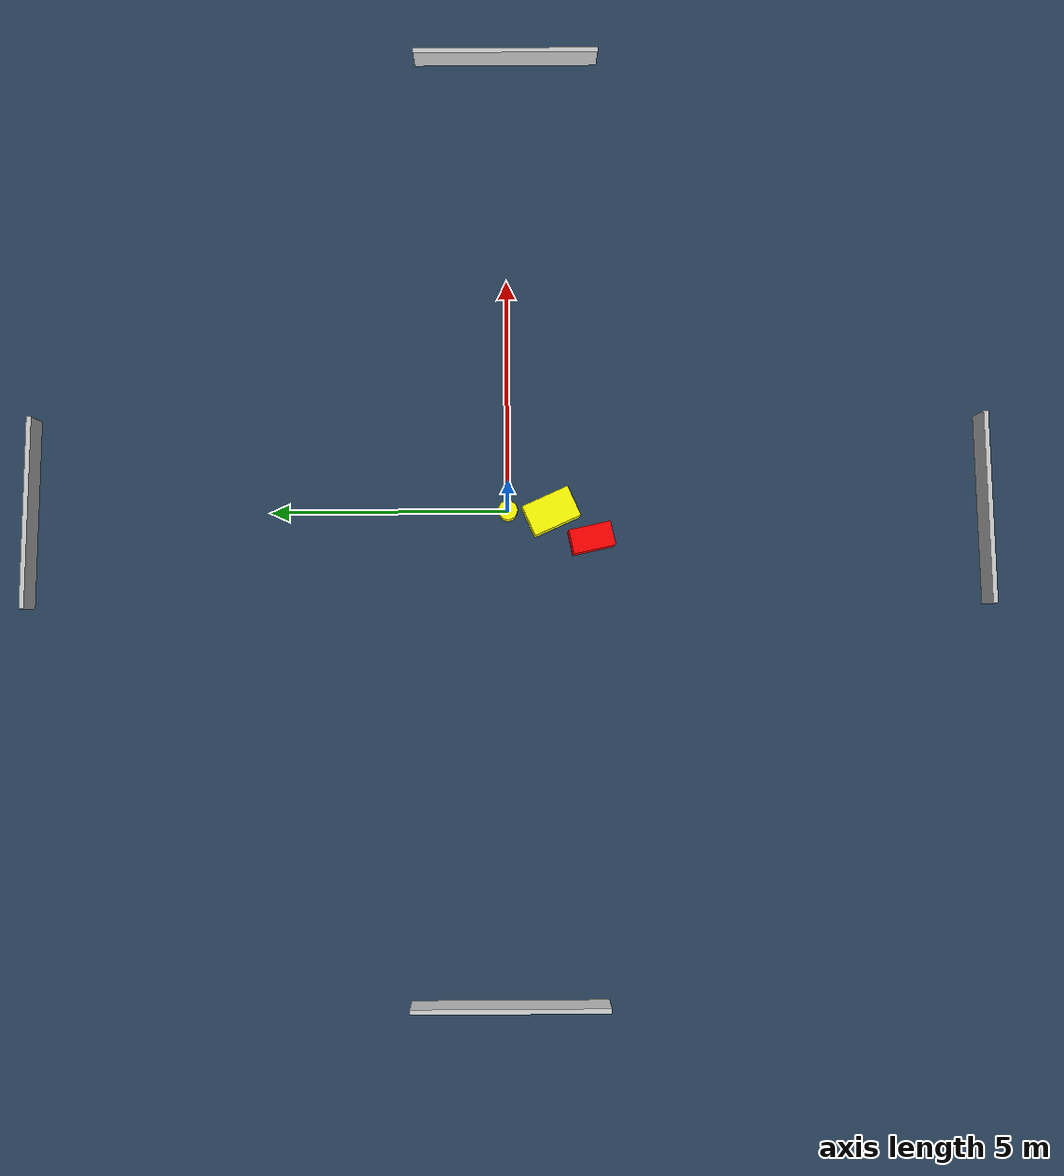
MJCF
<?xml version="1.0" ?>
<mujoco model="generated_environment">
  <option timestep="0.01" integrator="RK4" cone="elliptic"/>
  <default>
    <geom density="1"/>
  </default>
  <asset>
    <texture builtin="gradient" height="3072" name="skybox" rgb1="0.3 0.5 0.7" rgb2="0 0 0" type="skybox" width="512"/>
    <texture builtin="checker" height="300" name="groundplane" rgb1="0.2 0.3 0.4" rgb2="0.1 0.2 0.3" type="2d" width="300"/>
    <material name="groundplane" reflectance="0.2" texrepeat="5 5" texture="groundplane"/>
  </asset>
  <worldbody>
    <light dir="0 0 -1" directional="true" pos="0 0 1.5"/>
    <geom condim="3" friction="0.5 0.005 0.001" material="groundplane" name="floor" pos="0 0 0" size="0 0 0.05" type="plane"/>
    <body name="walls">
      <geom name="wall_1" condim="4" pos="-10.0 0.0 0.3" rgba="0.800000011920929 0.800000011920929 0.800000011920929 1.0" size="0.05 2.0 0.3" type="box"/>
      <geom name="wall_2" condim="4" pos="10.0 0.0 0.3" rgba="0.800000011920929 0.800000011920929 0.800000011920929 1.0" size="0.05 2.0 0.3" type="box"/>
      <geom name="wall_3" condim="4" pos="0.0 -10.0 0.3" rgba="0.800000011920929 0.800000011920929 0.800000011920929 1.0" size="2.0 0.05 0.3" type="box"/>
      <geom name="wall_4" condim="4" pos="0.0 10.0 0.3" rgba="0.800000011920929 0.800000011920929 0.800000011920929 1.0" size="2.0 0.05 0.3" type="box"/>
    </body>
    <body name="robot">
      <joint name="joint_x" type="slide" pos="0 0 0" axis="1 0 0"/>
      <joint name="joint_y" type="slide" pos="0 0 0" axis="0 1 0"/>
      <geom name="robot" type="cylinder" pos="0.0 0.0 0.2" size="0.2 0.2 0.0" mass="5.0" friction="1.0 0.005 0.0001" condim="4" rgba="1.0 1.0 0.0 1.0"/>
    </body>
    <body name="obstacle_1_movable">
      <geom name="obstacle_1_movable" condim="4" pos="-0.03881195563271981 -0.9008480704396329 0.3" euler="0 0 204.0203155340202" friction="0.0 0.005 0.001" rgba="1.0 1.0 0.0 1.0" size="0.33261705291164007 0.5200450698780577 0.3" type="box" mass="0.1"/>
      <joint type="free"/>
    </body>
    <body name="obstacle_2_static">
      <geom name="obstacle_2_static" condim="4" pos="-0.597931784549421 -1.7386390975596522 0.3" euler="0 0 12.087358569131554" friction="0.0 0.005 0.001" rgba="1.0 0.0 0.0 1.0" size="0.2537845305361845 0.4422125029912053 0.3" type="box"/>
    </body>
  </worldbody>
  <actuator>
    <motor name="actuator_x" joint="joint_x" gear="1" ctrlrange="-1 1"/>
    <motor name="actuator_y" joint="joint_y" gear="1" ctrlrange="-1 1"/>
  </actuator>
</mujoco>
